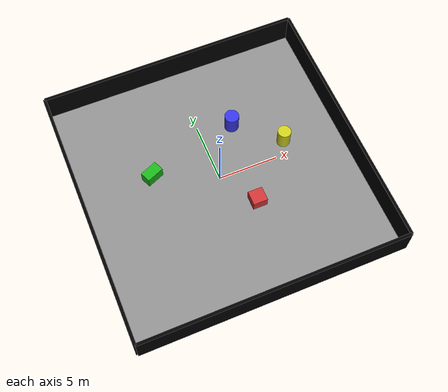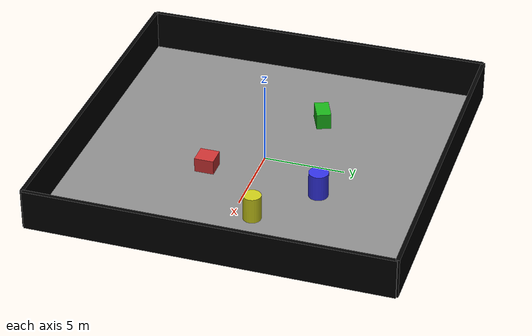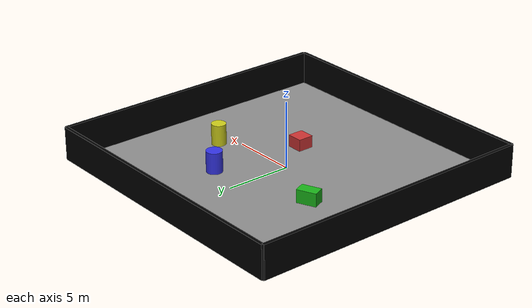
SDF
<sdf version="1.6">
 <world name="big_square_human_world">
  <physics name="default_physics" default="0" type="ode">
   <real_time_update_rate>1000</real_time_update_rate>
   <max_step_size>0.001</max_step_size>
  </physics>
  <include><uri>model://sun</uri></include>
  <model name="big_floor">
   <static>true</static>
   <pose>0 0 -0.03 0 0 0</pose>
   <link name="floor_link">
    <collision name="collision"><geometry><box><size>22 22 0.05</size></box></geometry></collision>
    <visual name="visual">
     <geometry><box><size>22 22 0.05</size></box></geometry>
     <material><ambient>0.55 0.55 0.55 1</ambient><diffuse>0.55 0.55 0.55 1</diffuse></material>
    </visual>
   </link>
  </model>
  <model name="wall_north">
   <static>true</static>
   <pose>0 11 1.25 0 0 0</pose>
   <link name="link">
    <collision name="collision"><geometry><box><size>22 0.25 2.5</size></box></geometry></collision>
    <visual name="visual">
     <geometry><box><size>22 0.25 2.5</size></box></geometry>
     <material><ambient>0 0 0 1</ambient><diffuse>0 0 0 1</diffuse></material>
    </visual>
   </link>
  </model>
  <model name="wall_south">
   <static>true</static>
   <pose>0 -11 1.25 0 0 0</pose>
   <link name="link">
    <collision name="collision"><geometry><box><size>22 0.25 2.5</size></box></geometry></collision>
    <visual name="visual">
     <geometry><box><size>22 0.25 2.5</size></box></geometry>
     <material><ambient>0 0 0 1</ambient><diffuse>0 0 0 1</diffuse></material>
    </visual>
   </link>
  </model>
  <model name="wall_east">
   <static>true</static>
   <pose>11 0 1.25 0 0 0</pose>
   <link name="link">
    <collision name="collision"><geometry><box><size>0.25 22 2.5</size></box></geometry></collision>
    <visual name="visual">
     <geometry><box><size>0.25 22 2.5</size></box></geometry>
     <material><ambient>0 0 0 1</ambient><diffuse>0 0 0 1</diffuse></material>
    </visual>
   </link>
  </model>
  <model name="wall_west">
   <static>true</static>
   <pose>-11 0 1.25 0 0 0</pose>
   <link name="link">
    <collision name="collision"><geometry><box><size>0.25 22 2.5</size></box></geometry></collision>
    <visual name="visual">
     <geometry><box><size>0.25 22 2.5</size></box></geometry>
     <material><ambient>0 0 0 1</ambient><diffuse>0 0 0 1</diffuse></material>
    </visual>
   </link>
  </model>
  <model name="obstacle_box_1">
   <static>true</static>
   <pose>2.0 -3.0 0.45 0 0 0</pose>
   <link name="link">
    <collision name="collision"><geometry><box><size>1.2 1.2 0.9</size></box></geometry></collision>
    <visual name="visual">
     <geometry><box><size>1.2 1.2 0.9</size></box></geometry>
     <material><ambient>0.8 0.2 0.2 1</ambient><diffuse>0.8 0.2 0.2 1</diffuse></material>
    </visual>
   </link>
  </model>
  <model name="obstacle_box_2">
   <static>true</static>
   <pose>-5.0 2.2 0.5 0 0 0.4</pose>
   <link name="link">
    <collision name="collision"><geometry><box><size>1.5 0.9 1.0</size></box></geometry></collision>
    <visual name="visual">
     <geometry><box><size>1.5 0.9 1.0</size></box></geometry>
     <material><ambient>0.1 0.7 0.1 1</ambient><diffuse>0.1 0.7 0.1 1</diffuse></material>
    </visual>
   </link>
  </model>
  <model name="obstacle_cylinder_1">
   <static>true</static>
   <pose>2.8 4.2 0.8 0 0 0</pose>
   <link name="link">
    <collision name="collision">
     <geometry><cylinder><radius>0.6</radius><length>1.6</length></cylinder></geometry>
    </collision>
    <visual name="visual">
     <geometry><cylinder><radius>0.6</radius><length>1.6</length></cylinder></geometry>
     <material><ambient>0.2 0.2 0.9 1</ambient><diffuse>0.2 0.2 0.9 1</diffuse></material>
    </visual>
   </link>
  </model>
  <model name="obstacle_cylinder_2">
   <static>true</static>
   <pose>6.2 1.2 0.8 0 0 0</pose>
   <link name="link">
    <collision name="collision">
     <geometry><cylinder><radius>0.55</radius><length>1.6</length></cylinder></geometry>
    </collision>
    <visual name="visual">
     <geometry><cylinder><radius>0.55</radius><length>1.6</length></cylinder></geometry>
     <material><ambient>0.8 0.8 0.1 1</ambient><diffuse>0.8 0.8 0.1 1</diffuse></material>
    </visual>
   </link>
  </model>
 </world>
</sdf>
